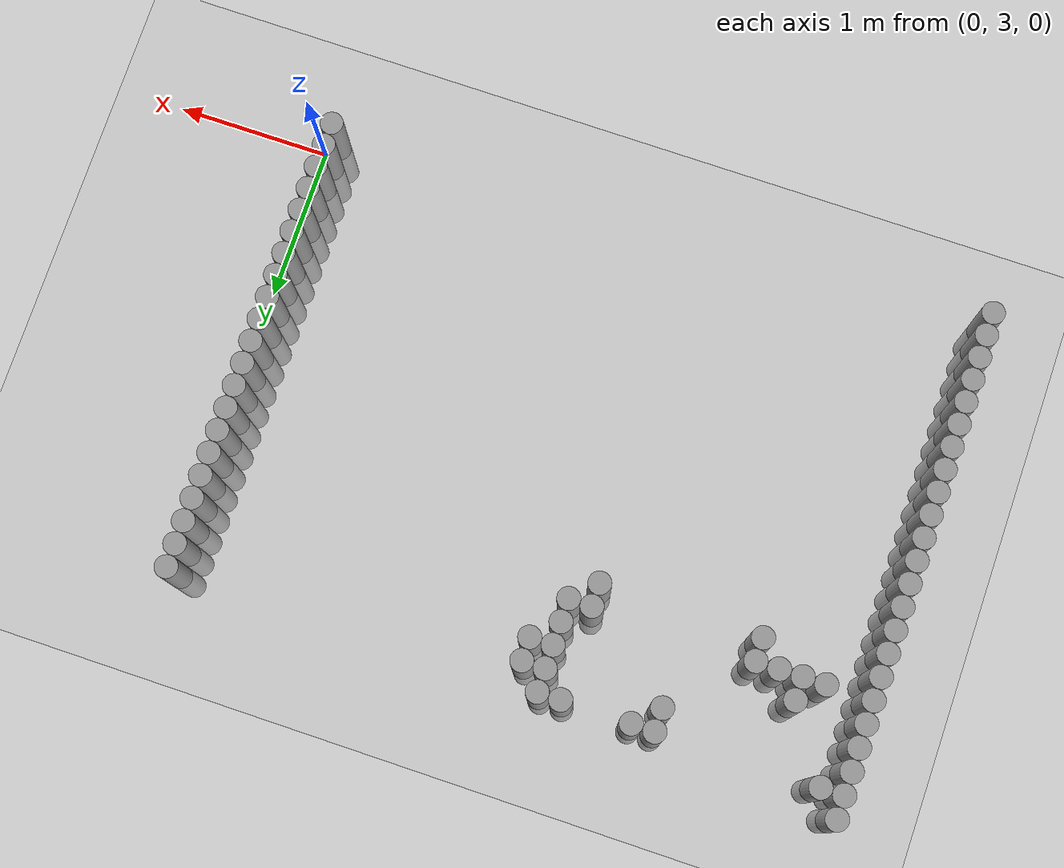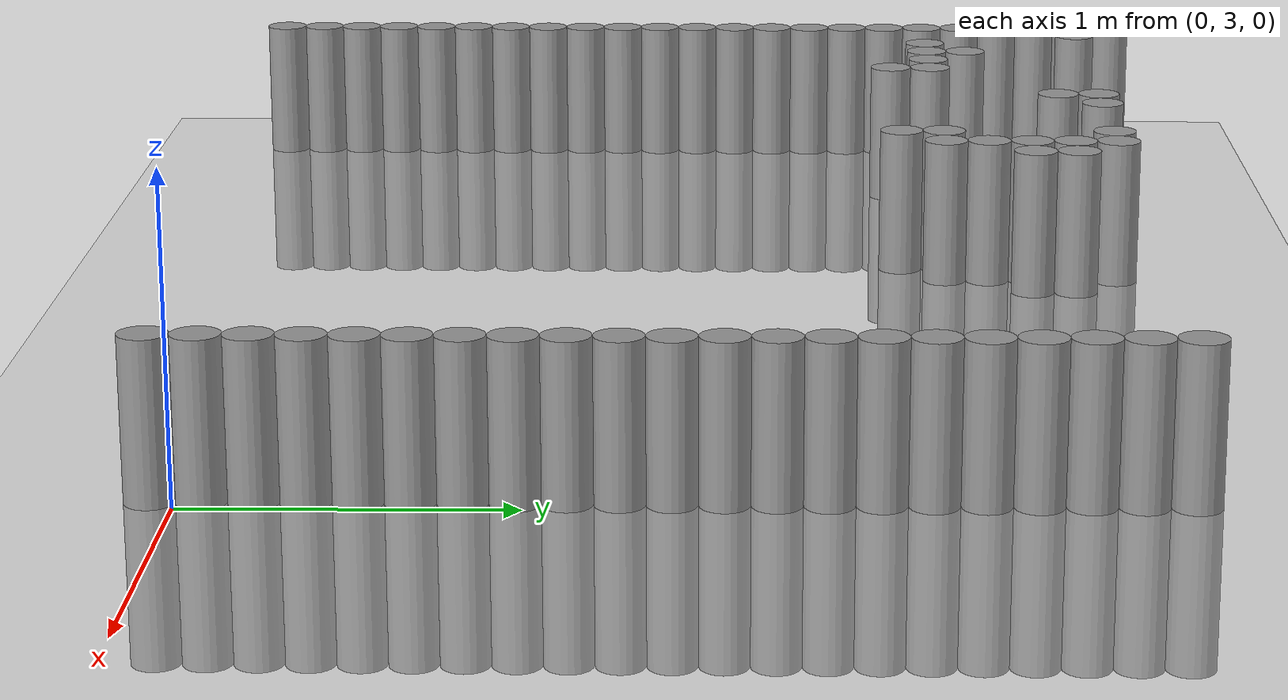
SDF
<sdf version="1.6">
 <world name="default">
  <model name="ground_plane">
   <static>1</static>
   <link name="link">
    <collision name="collision">
     <geometry><plane><normal>0 0 1</normal><size>100 100</size></plane></geometry>
     <surface><friction><ode><mu>100</mu><mu2>50</mu2></ode></friction></surface>
    </collision>
    <visual name="visual">
     <cast_shadows>0</cast_shadows>
     <geometry><plane><normal>0 0 1</normal><size>100 100</size></plane></geometry>
     <material>
      <script><uri>file://media/materials/scripts/gazebo.material</uri><name>Gazebo/Grey</name></script>
     </material>
    </visual>
   </link>
  </model>
  <model name="unit_cylinder_65">
   <pose>-4.425000 2.775000 0.000000 0.000000 0.000000 0.000000</pose>
   <link name="link">
    <inertial>
     <mass>1</mass>
     <inertia><ixx>0.145833</ixx><ixy>0</ixy><ixz>0</ixz><iyy>0.145833</iyy><iyz>0</iyz><izz>0.125</izz></inertia>
    </inertial>
    <collision name="collision">
     <geometry><cylinder><radius>0.075000</radius><length>1</length></cylinder></geometry>
    </collision>
    <visual name="visual">
     <geometry><cylinder><radius>0.075000</radius><length>1</length></cylinder></geometry>
     <material>
      <script><name>Gazebo/Grey</name><uri>file://media/materials/scripts/gazebo.material</uri></script>
     </material>
    </visual>
   </link>
  </model>
  <model name="unit_cylinder_66">
   <pose>-0.075000 2.925000 0.000000 0.000000 0.000000 0.000000</pose>
   <link name="link">
    <inertial>
     <mass>1</mass>
     <inertia><ixx>0.145833</ixx><ixy>0</ixy><ixz>0</ixz><iyy>0.145833</iyy><iyz>0</iyz><izz>0.125</izz></inertia>
    </inertial>
    <collision name="collision">
     <geometry><cylinder><radius>0.075000</radius><length>1</length></cylinder></geometry>
    </collision>
    <visual name="visual">
     <geometry><cylinder><radius>0.075000</radius><length>1</length></cylinder></geometry>
     <material>
      <script><name>Gazebo/Grey</name><uri>file://media/materials/scripts/gazebo.material</uri></script>
     </material>
    </visual>
   </link>
  </model>
  <model name="unit_cylinder_67">
   <pose>-4.425000 2.925000 0.000000 0.000000 0.000000 0.000000</pose>
   <link name="link">
    <inertial>
     <mass>1</mass>
     <inertia><ixx>0.145833</ixx><ixy>0</ixy><ixz>0</ixz><iyy>0.145833</iyy><iyz>0</iyz><izz>0.125</izz></inertia>
    </inertial>
    <collision name="collision">
     <geometry><cylinder><radius>0.075000</radius><length>1</length></cylinder></geometry>
    </collision>
    <visual name="visual">
     <geometry><cylinder><radius>0.075000</radius><length>1</length></cylinder></geometry>
     <material>
      <script><name>Gazebo/Grey</name><uri>file://media/materials/scripts/gazebo.material</uri></script>
     </material>
    </visual>
   </link>
  </model>
  <model name="unit_cylinder_68">
   <pose>-0.075000 3.075000 0.000000 0.000000 0.000000 0.000000</pose>
   <link name="link">
    <inertial>
     <mass>1</mass>
     <inertia><ixx>0.145833</ixx><ixy>0</ixy><ixz>0</ixz><iyy>0.145833</iyy><iyz>0</iyz><izz>0.125</izz></inertia>
    </inertial>
    <collision name="collision">
     <geometry><cylinder><radius>0.075000</radius><length>1</length></cylinder></geometry>
    </collision>
    <visual name="visual">
     <geometry><cylinder><radius>0.075000</radius><length>1</length></cylinder></geometry>
     <material>
      <script><name>Gazebo/Grey</name><uri>file://media/materials/scripts/gazebo.material</uri></script>
     </material>
    </visual>
   </link>
  </model>
  <model name="unit_cylinder_69">
   <pose>-4.425000 3.075000 0.000000 0.000000 0.000000 0.000000</pose>
   <link name="link">
    <inertial>
     <mass>1</mass>
     <inertia><ixx>0.145833</ixx><ixy>0</ixy><ixz>0</ixz><iyy>0.145833</iyy><iyz>0</iyz><izz>0.125</izz></inertia>
    </inertial>
    <collision name="collision">
     <geometry><cylinder><radius>0.075000</radius><length>1</length></cylinder></geometry>
    </collision>
    <visual name="visual">
     <geometry><cylinder><radius>0.075000</radius><length>1</length></cylinder></geometry>
     <material>
      <script><name>Gazebo/Grey</name><uri>file://media/materials/scripts/gazebo.material</uri></script>
     </material>
    </visual>
   </link>
  </model>
  <model name="unit_cylinder_70">
   <pose>-0.075000 3.225000 0.000000 0.000000 0.000000 0.000000</pose>
   <link name="link">
    <inertial>
     <mass>1</mass>
     <inertia><ixx>0.145833</ixx><ixy>0</ixy><ixz>0</ixz><iyy>0.145833</iyy><iyz>0</iyz><izz>0.125</izz></inertia>
    </inertial>
    <collision name="collision">
     <geometry><cylinder><radius>0.075000</radius><length>1</length></cylinder></geometry>
    </collision>
    <visual name="visual">
     <geometry><cylinder><radius>0.075000</radius><length>1</length></cylinder></geometry>
     <material>
      <script><name>Gazebo/Grey</name><uri>file://media/materials/scripts/gazebo.material</uri></script>
     </material>
    </visual>
   </link>
  </model>
  <model name="unit_cylinder_71">
   <pose>-4.425000 3.225000 0.000000 0.000000 0.000000 0.000000</pose>
   <link name="link">
    <inertial>
     <mass>1</mass>
     <inertia><ixx>0.145833</ixx><ixy>0</ixy><ixz>0</ixz><iyy>0.145833</iyy><iyz>0</iyz><izz>0.125</izz></inertia>
    </inertial>
    <collision name="collision">
     <geometry><cylinder><radius>0.075000</radius><length>1</length></cylinder></geometry>
    </collision>
    <visual name="visual">
     <geometry><cylinder><radius>0.075000</radius><length>1</length></cylinder></geometry>
     <material>
      <script><name>Gazebo/Grey</name><uri>file://media/materials/scripts/gazebo.material</uri></script>
     </material>
    </visual>
   </link>
  </model>
  <model name="unit_cylinder_72">
   <pose>-0.075000 3.375000 0.000000 0.000000 0.000000 0.000000</pose>
   <link name="link">
    <inertial>
     <mass>1</mass>
     <inertia><ixx>0.145833</ixx><ixy>0</ixy><ixz>0</ixz><iyy>0.145833</iyy><iyz>0</iyz><izz>0.125</izz></inertia>
    </inertial>
    <collision name="collision">
     <geometry><cylinder><radius>0.075000</radius><length>1</length></cylinder></geometry>
    </collision>
    <visual name="visual">
     <geometry><cylinder><radius>0.075000</radius><length>1</length></cylinder></geometry>
     <material>
      <script><name>Gazebo/Grey</name><uri>file://media/materials/scripts/gazebo.material</uri></script>
     </material>
    </visual>
   </link>
  </model>
  <model name="unit_cylinder_73">
   <pose>-4.425000 3.375000 0.000000 0.000000 0.000000 0.000000</pose>
   <link name="link">
    <inertial>
     <mass>1</mass>
     <inertia><ixx>0.145833</ixx><ixy>0</ixy><ixz>0</ixz><iyy>0.145833</iyy><iyz>0</iyz><izz>0.125</izz></inertia>
    </inertial>
    <collision name="collision">
     <geometry><cylinder><radius>0.075000</radius><length>1</length></cylinder></geometry>
    </collision>
    <visual name="visual">
     <geometry><cylinder><radius>0.075000</radius><length>1</length></cylinder></geometry>
     <material>
      <script><name>Gazebo/Grey</name><uri>file://media/materials/scripts/gazebo.material</uri></script>
     </material>
    </visual>
   </link>
  </model>
  <model name="unit_cylinder_74">
   <pose>-0.075000 3.525000 0.000000 0.000000 0.000000 0.000000</pose>
   <link name="link">
    <inertial>
     <mass>1</mass>
     <inertia><ixx>0.145833</ixx><ixy>0</ixy><ixz>0</ixz><iyy>0.145833</iyy><iyz>0</iyz><izz>0.125</izz></inertia>
    </inertial>
    <collision name="collision">
     <geometry><cylinder><radius>0.075000</radius><length>1</length></cylinder></geometry>
    </collision>
    <visual name="visual">
     <geometry><cylinder><radius>0.075000</radius><length>1</length></cylinder></geometry>
     <material>
      <script><name>Gazebo/Grey</name><uri>file://media/materials/scripts/gazebo.material</uri></script>
     </material>
    </visual>
   </link>
  </model>
  <model name="unit_cylinder_75">
   <pose>-4.425000 3.525000 0.000000 0.000000 0.000000 0.000000</pose>
   <link name="link">
    <inertial>
     <mass>1</mass>
     <inertia><ixx>0.145833</ixx><ixy>0</ixy><ixz>0</ixz><iyy>0.145833</iyy><iyz>0</iyz><izz>0.125</izz></inertia>
    </inertial>
    <collision name="collision">
     <geometry><cylinder><radius>0.075000</radius><length>1</length></cylinder></geometry>
    </collision>
    <visual name="visual">
     <geometry><cylinder><radius>0.075000</radius><length>1</length></cylinder></geometry>
     <material>
      <script><name>Gazebo/Grey</name><uri>file://media/materials/scripts/gazebo.material</uri></script>
     </material>
    </visual>
   </link>
  </model>
  <model name="unit_cylinder_76">
   <pose>-0.075000 3.675000 0.000000 0.000000 0.000000 0.000000</pose>
   <link name="link">
    <inertial>
     <mass>1</mass>
     <inertia><ixx>0.145833</ixx><ixy>0</ixy><ixz>0</ixz><iyy>0.145833</iyy><iyz>0</iyz><izz>0.125</izz></inertia>
    </inertial>
    <collision name="collision">
     <geometry><cylinder><radius>0.075000</radius><length>1</length></cylinder></geometry>
    </collision>
    <visual name="visual">
     <geometry><cylinder><radius>0.075000</radius><length>1</length></cylinder></geometry>
     <material>
      <script><name>Gazebo/Grey</name><uri>file://media/materials/scripts/gazebo.material</uri></script>
     </material>
    </visual>
   </link>
  </model>
  <model name="unit_cylinder_77">
   <pose>-4.425000 3.675000 0.000000 0.000000 0.000000 0.000000</pose>
   <link name="link">
    <inertial>
     <mass>1</mass>
     <inertia><ixx>0.145833</ixx><ixy>0</ixy><ixz>0</ixz><iyy>0.145833</iyy><iyz>0</iyz><izz>0.125</izz></inertia>
    </inertial>
    <collision name="collision">
     <geometry><cylinder><radius>0.075000</radius><length>1</length></cylinder></geometry>
    </collision>
    <visual name="visual">
     <geometry><cylinder><radius>0.075000</radius><length>1</length></cylinder></geometry>
     <material>
      <script><name>Gazebo/Grey</name><uri>file://media/materials/scripts/gazebo.material</uri></script>
     </material>
    </visual>
   </link>
  </model>
  <model name="unit_cylinder_78">
   <pose>-0.075000 3.825000 0.000000 0.000000 0.000000 0.000000</pose>
   <link name="link">
    <inertial>
     <mass>1</mass>
     <inertia><ixx>0.145833</ixx><ixy>0</ixy><ixz>0</ixz><iyy>0.145833</iyy><iyz>0</iyz><izz>0.125</izz></inertia>
    </inertial>
    <collision name="collision">
     <geometry><cylinder><radius>0.075000</radius><length>1</length></cylinder></geometry>
    </collision>
    <visual name="visual">
     <geometry><cylinder><radius>0.075000</radius><length>1</length></cylinder></geometry>
     <material>
      <script><name>Gazebo/Grey</name><uri>file://media/materials/scripts/gazebo.material</uri></script>
     </material>
    </visual>
   </link>
  </model>
  <model name="unit_cylinder_79">
   <pose>-4.425000 3.825000 0.000000 0.000000 0.000000 0.000000</pose>
   <link name="link">
    <inertial>
     <mass>1</mass>
     <inertia><ixx>0.145833</ixx><ixy>0</ixy><ixz>0</ixz><iyy>0.145833</iyy><iyz>0</iyz><izz>0.125</izz></inertia>
    </inertial>
    <collision name="collision">
     <geometry><cylinder><radius>0.075000</radius><length>1</length></cylinder></geometry>
    </collision>
    <visual name="visual">
     <geometry><cylinder><radius>0.075000</radius><length>1</length></cylinder></geometry>
     <material>
      <script><name>Gazebo/Grey</name><uri>file://media/materials/scripts/gazebo.material</uri></script>
     </material>
    </visual>
   </link>
  </model>
  <model name="unit_cylinder_80">
   <pose>-0.075000 3.975000 0.000000 0.000000 0.000000 0.000000</pose>
   <link name="link">
    <inertial>
     <mass>1</mass>
     <inertia><ixx>0.145833</ixx><ixy>0</ixy><ixz>0</ixz><iyy>0.145833</iyy><iyz>0</iyz><izz>0.125</izz></inertia>
    </inertial>
    <collision name="collision">
     <geometry><cylinder><radius>0.075000</radius><length>1</length></cylinder></geometry>
    </collision>
    <visual name="visual">
     <geometry><cylinder><radius>0.075000</radius><length>1</length></cylinder></geometry>
     <material>
      <script><name>Gazebo/Grey</name><uri>file://media/materials/scripts/gazebo.material</uri></script>
     </material>
    </visual>
   </link>
  </model>
  <model name="unit_cylinder_81">
   <pose>-4.425000 3.975000 0.000000 0.000000 0.000000 0.000000</pose>
   <link name="link">
    <inertial>
     <mass>1</mass>
     <inertia><ixx>0.145833</ixx><ixy>0</ixy><ixz>0</ixz><iyy>0.145833</iyy><iyz>0</iyz><izz>0.125</izz></inertia>
    </inertial>
    <collision name="collision">
     <geometry><cylinder><radius>0.075000</radius><length>1</length></cylinder></geometry>
    </collision>
    <visual name="visual">
     <geometry><cylinder><radius>0.075000</radius><length>1</length></cylinder></geometry>
     <material>
      <script><name>Gazebo/Grey</name><uri>file://media/materials/scripts/gazebo.material</uri></script>
     </material>
    </visual>
   </link>
  </model>
  <model name="unit_cylinder_82">
   <pose>-0.075000 4.125000 0.000000 0.000000 0.000000 0.000000</pose>
   <link name="link">
    <inertial>
     <mass>1</mass>
     <inertia><ixx>0.145833</ixx><ixy>0</ixy><ixz>0</ixz><iyy>0.145833</iyy><iyz>0</iyz><izz>0.125</izz></inertia>
    </inertial>
    <collision name="collision">
     <geometry><cylinder><radius>0.075000</radius><length>1</length></cylinder></geometry>
    </collision>
    <visual name="visual">
     <geometry><cylinder><radius>0.075000</radius><length>1</length></cylinder></geometry>
     <material>
      <script><name>Gazebo/Grey</name><uri>file://media/materials/scripts/gazebo.material</uri></script>
     </material>
    </visual>
   </link>
  </model>
  <model name="unit_cylinder_83">
   <pose>-4.425000 4.125000 0.000000 0.000000 0.000000 0.000000</pose>
   <link name="link">
    <inertial>
     <mass>1</mass>
     <inertia><ixx>0.145833</ixx><ixy>0</ixy><ixz>0</ixz><iyy>0.145833</iyy><iyz>0</iyz><izz>0.125</izz></inertia>
    </inertial>
    <collision name="collision">
     <geometry><cylinder><radius>0.075000</radius><length>1</length></cylinder></geometry>
    </collision>
    <visual name="visual">
     <geometry><cylinder><radius>0.075000</radius><length>1</length></cylinder></geometry>
     <material>
      <script><name>Gazebo/Grey</name><uri>file://media/materials/scripts/gazebo.material</uri></script>
     </material>
    </visual>
   </link>
  </model>
  <model name="unit_cylinder_84">
   <pose>-0.075000 4.275000 0.000000 0.000000 0.000000 0.000000</pose>
   <link name="link">
    <inertial>
     <mass>1</mass>
     <inertia><ixx>0.145833</ixx><ixy>0</ixy><ixz>0</ixz><iyy>0.145833</iyy><iyz>0</iyz><izz>0.125</izz></inertia>
    </inertial>
    <collision name="collision">
     <geometry><cylinder><radius>0.075000</radius><length>1</length></cylinder></geometry>
    </collision>
    <visual name="visual">
     <geometry><cylinder><radius>0.075000</radius><length>1</length></cylinder></geometry>
     <material>
      <script><name>Gazebo/Grey</name><uri>file://media/materials/scripts/gazebo.material</uri></script>
     </material>
    </visual>
   </link>
  </model>
  <model name="unit_cylinder_85">
   <pose>-4.425000 4.275000 0.000000 0.000000 0.000000 0.000000</pose>
   <link name="link">
    <inertial>
     <mass>1</mass>
     <inertia><ixx>0.145833</ixx><ixy>0</ixy><ixz>0</ixz><iyy>0.145833</iyy><iyz>0</iyz><izz>0.125</izz></inertia>
    </inertial>
    <collision name="collision">
     <geometry><cylinder><radius>0.075000</radius><length>1</length></cylinder></geometry>
    </collision>
    <visual name="visual">
     <geometry><cylinder><radius>0.075000</radius><length>1</length></cylinder></geometry>
     <material>
      <script><name>Gazebo/Grey</name><uri>file://media/materials/scripts/gazebo.material</uri></script>
     </material>
    </visual>
   </link>
  </model>
  <model name="unit_cylinder_86">
   <pose>-0.075000 4.425000 0.000000 0.000000 0.000000 0.000000</pose>
   <link name="link">
    <inertial>
     <mass>1</mass>
     <inertia><ixx>0.145833</ixx><ixy>0</ixy><ixz>0</ixz><iyy>0.145833</iyy><iyz>0</iyz><izz>0.125</izz></inertia>
    </inertial>
    <collision name="collision">
     <geometry><cylinder><radius>0.075000</radius><length>1</length></cylinder></geometry>
    </collision>
    <visual name="visual">
     <geometry><cylinder><radius>0.075000</radius><length>1</length></cylinder></geometry>
     <material>
      <script><name>Gazebo/Grey</name><uri>file://media/materials/scripts/gazebo.material</uri></script>
     </material>
    </visual>
   </link>
  </model>
  <model name="unit_cylinder_87">
   <pose>-4.425000 4.425000 0.000000 0.000000 0.000000 0.000000</pose>
   <link name="link">
    <inertial>
     <mass>1</mass>
     <inertia><ixx>0.145833</ixx><ixy>0</ixy><ixz>0</ixz><iyy>0.145833</iyy><iyz>0</iyz><izz>0.125</izz></inertia>
    </inertial>
    <collision name="collision">
     <geometry><cylinder><radius>0.075000</radius><length>1</length></cylinder></geometry>
    </collision>
    <visual name="visual">
     <geometry><cylinder><radius>0.075000</radius><length>1</length></cylinder></geometry>
     <material>
      <script><name>Gazebo/Grey</name><uri>file://media/materials/scripts/gazebo.material</uri></script>
     </material>
    </visual>
   </link>
  </model>
  <model name="unit_cylinder_88">
   <pose>-0.075000 4.575000 0.000000 0.000000 0.000000 0.000000</pose>
   <link name="link">
    <inertial>
     <mass>1</mass>
     <inertia><ixx>0.145833</ixx><ixy>0</ixy><ixz>0</ixz><iyy>0.145833</iyy><iyz>0</iyz><izz>0.125</izz></inertia>
    </inertial>
    <collision name="collision">
     <geometry><cylinder><radius>0.075000</radius><length>1</length></cylinder></geometry>
    </collision>
    <visual name="visual">
     <geometry><cylinder><radius>0.075000</radius><length>1</length></cylinder></geometry>
     <material>
      <script><name>Gazebo/Grey</name><uri>file://media/materials/scripts/gazebo.material</uri></script>
     </material>
    </visual>
   </link>
  </model>
  <model name="unit_cylinder_89">
   <pose>-4.425000 4.575000 0.000000 0.000000 0.000000 0.000000</pose>
   <link name="link">
    <inertial>
     <mass>1</mass>
     <inertia><ixx>0.145833</ixx><ixy>0</ixy><ixz>0</ixz><iyy>0.145833</iyy><iyz>0</iyz><izz>0.125</izz></inertia>
    </inertial>
    <collision name="collision">
     <geometry><cylinder><radius>0.075000</radius><length>1</length></cylinder></geometry>
    </collision>
    <visual name="visual">
     <geometry><cylinder><radius>0.075000</radius><length>1</length></cylinder></geometry>
     <material>
      <script><name>Gazebo/Grey</name><uri>file://media/materials/scripts/gazebo.material</uri></script>
     </material>
    </visual>
   </link>
  </model>
  <model name="unit_cylinder_90">
   <pose>-0.075000 4.725000 0.000000 0.000000 0.000000 0.000000</pose>
   <link name="link">
    <inertial>
     <mass>1</mass>
     <inertia><ixx>0.145833</ixx><ixy>0</ixy><ixz>0</ixz><iyy>0.145833</iyy><iyz>0</iyz><izz>0.125</izz></inertia>
    </inertial>
    <collision name="collision">
     <geometry><cylinder><radius>0.075000</radius><length>1</length></cylinder></geometry>
    </collision>
    <visual name="visual">
     <geometry><cylinder><radius>0.075000</radius><length>1</length></cylinder></geometry>
     <material>
      <script><name>Gazebo/Grey</name><uri>file://media/materials/scripts/gazebo.material</uri></script>
     </material>
    </visual>
   </link>
  </model>
  <model name="unit_cylinder_91">
   <pose>-4.425000 4.725000 0.000000 0.000000 0.000000 0.000000</pose>
   <link name="link">
    <inertial>
     <mass>1</mass>
     <inertia><ixx>0.145833</ixx><ixy>0</ixy><ixz>0</ixz><iyy>0.145833</iyy><iyz>0</iyz><izz>0.125</izz></inertia>
    </inertial>
    <collision name="collision">
     <geometry><cylinder><radius>0.075000</radius><length>1</length></cylinder></geometry>
    </collision>
    <visual name="visual">
     <geometry><cylinder><radius>0.075000</radius><length>1</length></cylinder></geometry>
     <material>
      <script><name>Gazebo/Grey</name><uri>file://media/materials/scripts/gazebo.material</uri></script>
     </material>
    </visual>
   </link>
  </model>
  <model name="unit_cylinder_92">
   <pose>-0.075000 4.875000 0.000000 0.000000 0.000000 0.000000</pose>
   <link name="link">
    <inertial>
     <mass>1</mass>
     <inertia><ixx>0.145833</ixx><ixy>0</ixy><ixz>0</ixz><iyy>0.145833</iyy><iyz>0</iyz><izz>0.125</izz></inertia>
    </inertial>
    <collision name="collision">
     <geometry><cylinder><radius>0.075000</radius><length>1</length></cylinder></geometry>
    </collision>
    <visual name="visual">
     <geometry><cylinder><radius>0.075000</radius><length>1</length></cylinder></geometry>
     <material>
      <script><name>Gazebo/Grey</name><uri>file://media/materials/scripts/gazebo.material</uri></script>
     </material>
    </visual>
   </link>
  </model>
  <model name="unit_cylinder_93">
   <pose>-4.425000 4.875000 0.000000 0.000000 0.000000 0.000000</pose>
   <link name="link">
    <inertial>
     <mass>1</mass>
     <inertia><ixx>0.145833</ixx><ixy>0</ixy><ixz>0</ixz><iyy>0.145833</iyy><iyz>0</iyz><izz>0.125</izz></inertia>
    </inertial>
    <collision name="collision">
     <geometry><cylinder><radius>0.075000</radius><length>1</length></cylinder></geometry>
    </collision>
    <visual name="visual">
     <geometry><cylinder><radius>0.075000</radius><length>1</length></cylinder></geometry>
     <material>
      <script><name>Gazebo/Grey</name><uri>file://media/materials/scripts/gazebo.material</uri></script>
     </material>
    </visual>
   </link>
  </model>
  <model name="unit_cylinder_94">
   <pose>-0.075000 5.025000 0.000000 0.000000 0.000000 0.000000</pose>
   <link name="link">
    <inertial>
     <mass>1</mass>
     <inertia><ixx>0.145833</ixx><ixy>0</ixy><ixz>0</ixz><iyy>0.145833</iyy><iyz>0</iyz><izz>0.125</izz></inertia>
    </inertial>
    <collision name="collision">
     <geometry><cylinder><radius>0.075000</radius><length>1</length></cylinder></geometry>
    </collision>
    <visual name="visual">
     <geometry><cylinder><radius>0.075000</radius><length>1</length></cylinder></geometry>
     <material>
      <script><name>Gazebo/Grey</name><uri>file://media/materials/scripts/gazebo.material</uri></script>
     </material>
    </visual>
   </link>
  </model>
  <model name="unit_cylinder_95">
   <pose>-4.425000 5.025000 0.000000 0.000000 0.000000 0.000000</pose>
   <link name="link">
    <inertial>
     <mass>1</mass>
     <inertia><ixx>0.145833</ixx><ixy>0</ixy><ixz>0</ixz><iyy>0.145833</iyy><iyz>0</iyz><izz>0.125</izz></inertia>
    </inertial>
    <collision name="collision">
     <geometry><cylinder><radius>0.075000</radius><length>1</length></cylinder></geometry>
    </collision>
    <visual name="visual">
     <geometry><cylinder><radius>0.075000</radius><length>1</length></cylinder></geometry>
     <material>
      <script><name>Gazebo/Grey</name><uri>file://media/materials/scripts/gazebo.material</uri></script>
     </material>
    </visual>
   </link>
  </model>
  <model name="unit_cylinder_96">
   <pose>-4.425000 5.175000 0.000000 0.000000 0.000000 0.000000</pose>
   <link name="link">
    <inertial>
     <mass>1</mass>
     <inertia><ixx>0.145833</ixx><ixy>0</ixy><ixz>0</ixz><iyy>0.145833</iyy><iyz>0</iyz><izz>0.125</izz></inertia>
    </inertial>
    <collision name="collision">
     <geometry><cylinder><radius>0.075000</radius><length>1</length></cylinder></geometry>
    </collision>
    <visual name="visual">
     <geometry><cylinder><radius>0.075000</radius><length>1</length></cylinder></geometry>
     <material>
      <script><name>Gazebo/Grey</name><uri>file://media/materials/scripts/gazebo.material</uri></script>
     </material>
    </visual>
   </link>
  </model>
  <model name="unit_cylinder_97">
   <pose>-4.425000 5.325000 0.000000 0.000000 0.000000 0.000000</pose>
   <link name="link">
    <inertial>
     <mass>1</mass>
     <inertia><ixx>0.145833</ixx><ixy>0</ixy><ixz>0</ixz><iyy>0.145833</iyy><iyz>0</iyz><izz>0.125</izz></inertia>
    </inertial>
    <collision name="collision">
     <geometry><cylinder><radius>0.075000</radius><length>1</length></cylinder></geometry>
    </collision>
    <visual name="visual">
     <geometry><cylinder><radius>0.075000</radius><length>1</length></cylinder></geometry>
     <material>
      <script><name>Gazebo/Grey</name><uri>file://media/materials/scripts/gazebo.material</uri></script>
     </material>
    </visual>
   </link>
  </model>
  <model name="unit_cylinder_98">
   <pose>-4.425000 5.475000 0.000000 0.000000 0.000000 0.000000</pose>
   <link name="link">
    <inertial>
     <mass>1</mass>
     <inertia><ixx>0.145833</ixx><ixy>0</ixy><ixz>0</ixz><iyy>0.145833</iyy><iyz>0</iyz><izz>0.125</izz></inertia>
    </inertial>
    <collision name="collision">
     <geometry><cylinder><radius>0.075000</radius><length>1</length></cylinder></geometry>
    </collision>
    <visual name="visual">
     <geometry><cylinder><radius>0.075000</radius><length>1</length></cylinder></geometry>
     <material>
      <script><name>Gazebo/Grey</name><uri>file://media/materials/scripts/gazebo.material</uri></script>
     </material>
    </visual>
   </link>
  </model>
  <model name="unit_cylinder_99">
   <pose>-4.425000 5.625000 0.000000 0.000000 0.000000 0.000000</pose>
   <link name="link">
    <inertial>
     <mass>1</mass>
     <inertia><ixx>0.145833</ixx><ixy>0</ixy><ixz>0</ixz><iyy>0.145833</iyy><iyz>0</iyz><izz>0.125</izz></inertia>
    </inertial>
    <collision name="collision">
     <geometry><cylinder><radius>0.075000</radius><length>1</length></cylinder></geometry>
    </collision>
    <visual name="visual">
     <geometry><cylinder><radius>0.075000</radius><length>1</length></cylinder></geometry>
     <material>
      <script><name>Gazebo/Grey</name><uri>file://media/materials/scripts/gazebo.material</uri></script>
     </material>
    </visual>
   </link>
  </model>
  <model name="unit_cylinder_100">
   <pose>-4.425000 5.775000 0.000000 0.000000 0.000000 0.000000</pose>
   <link name="link">
    <inertial>
     <mass>1</mass>
     <inertia><ixx>0.145833</ixx><ixy>0</ixy><ixz>0</ixz><iyy>0.145833</iyy><iyz>0</iyz><izz>0.125</izz></inertia>
    </inertial>
    <collision name="collision">
     <geometry><cylinder><radius>0.075000</radius><length>1</length></cylinder></geometry>
    </collision>
    <visual name="visual">
     <geometry><cylinder><radius>0.075000</radius><length>1</length></cylinder></geometry>
     <material>
      <script><name>Gazebo/Grey</name><uri>file://media/materials/scripts/gazebo.material</uri></script>
     </material>
    </visual>
   </link>
  </model>
  <model name="unit_cylinder_101">
   <pose>-4.425000 5.925000 0.000000 0.000000 0.000000 0.000000</pose>
   <link name="link">
    <inertial>
     <mass>1</mass>
     <inertia><ixx>0.145833</ixx><ixy>0</ixy><ixz>0</ixz><iyy>0.145833</iyy><iyz>0</iyz><izz>0.125</izz></inertia>
    </inertial>
    <collision name="collision">
     <geometry><cylinder><radius>0.075000</radius><length>1</length></cylinder></geometry>
    </collision>
    <visual name="visual">
     <geometry><cylinder><radius>0.075000</radius><length>1</length></cylinder></geometry>
     <material>
      <script><name>Gazebo/Grey</name><uri>file://media/materials/scripts/gazebo.material</uri></script>
     </material>
    </visual>
   </link>
  </model>
  <model name="unit_cylinder_102">
   <pose>-4.425000 6.075000 0.000000 0.000000 0.000000 0.000000</pose>
   <link name="link">
    <inertial>
     <mass>1</mass>
     <inertia><ixx>0.145833</ixx><ixy>0</ixy><ixz>0</ixz><iyy>0.145833</iyy><iyz>0</iyz><izz>0.125</izz></inertia>
    </inertial>
    <collision name="collision">
     <geometry><cylinder><radius>0.075000</radius><length>1</length></cylinder></geometry>
    </collision>
    <visual name="visual">
     <geometry><cylinder><radius>0.075000</radius><length>1</length></cylinder></geometry>
     <material>
      <script><name>Gazebo/Grey</name><uri>file://media/materials/scripts/gazebo.material</uri></script>
     </material>
    </visual>
   </link>
  </model>
  <model name="unit_cylinder_126">
   <pose>-4.275000 5.925000 0.000000 0.000000 0.000000 0.000000</pose>
   <link name="link">
    <inertial>
     <mass>1</mass>
     <inertia><ixx>0.145833</ixx><ixy>0</ixy><ixz>0</ixz><iyy>0.145833</iyy><iyz>0</iyz><izz>0.125</izz></inertia>
    </inertial>
    <collision name="collision">
     <geometry><cylinder><radius>0.075000</radius><length>1</length></cylinder></geometry>
    </collision>
    <visual name="visual">
     <geometry><cylinder><radius>0.075000</radius><length>1</length></cylinder></geometry>
     <material>
      <script><name>Gazebo/Grey</name><uri>file://media/materials/scripts/gazebo.material</uri></script>
     </material>
    </visual>
   </link>
  </model>
  <model name="unit_cylinder_143">
   <pose>-4.125000 5.325000 0.000000 0.000000 0.000000 0.000000</pose>
   <link name="link">
    <inertial>
     <mass>1</mass>
     <inertia><ixx>0.145833</ixx><ixy>0</ixy><ixz>0</ixz><iyy>0.145833</iyy><iyz>0</iyz><izz>0.125</izz></inertia>
    </inertial>
    <collision name="collision">
     <geometry><cylinder><radius>0.075000</radius><length>1</length></cylinder></geometry>
    </collision>
    <visual name="visual">
     <geometry><cylinder><radius>0.075000</radius><length>1</length></cylinder></geometry>
     <material>
      <script><name>Gazebo/Grey</name><uri>file://media/materials/scripts/gazebo.material</uri></script>
     </material>
    </visual>
   </link>
  </model>
  <model name="unit_cylinder_150">
   <pose>-3.975000 5.325000 0.000000 0.000000 0.000000 0.000000</pose>
   <link name="link">
    <inertial>
     <mass>1</mass>
     <inertia><ixx>0.145833</ixx><ixy>0</ixy><ixz>0</ixz><iyy>0.145833</iyy><iyz>0</iyz><izz>0.125</izz></inertia>
    </inertial>
    <collision name="collision">
     <geometry><cylinder><radius>0.075000</radius><length>1</length></cylinder></geometry>
    </collision>
    <visual name="visual">
     <geometry><cylinder><radius>0.075000</radius><length>1</length></cylinder></geometry>
     <material>
      <script><name>Gazebo/Grey</name><uri>file://media/materials/scripts/gazebo.material</uri></script>
     </material>
    </visual>
   </link>
  </model>
  <model name="unit_cylinder_151">
   <pose>-3.975000 5.475000 0.000000 0.000000 0.000000 0.000000</pose>
   <link name="link">
    <inertial>
     <mass>1</mass>
     <inertia><ixx>0.145833</ixx><ixy>0</ixy><ixz>0</ixz><iyy>0.145833</iyy><iyz>0</iyz><izz>0.125</izz></inertia>
    </inertial>
    <collision name="collision">
     <geometry><cylinder><radius>0.075000</radius><length>1</length></cylinder></geometry>
    </collision>
    <visual name="visual">
     <geometry><cylinder><radius>0.075000</radius><length>1</length></cylinder></geometry>
     <material>
      <script><name>Gazebo/Grey</name><uri>file://media/materials/scripts/gazebo.material</uri></script>
     </material>
    </visual>
   </link>
  </model>
  <model name="unit_cylinder_156">
   <pose>-3.825000 5.325000 0.000000 0.000000 0.000000 0.000000</pose>
   <link name="link">
    <inertial>
     <mass>1</mass>
     <inertia><ixx>0.145833</ixx><ixy>0</ixy><ixz>0</ixz><iyy>0.145833</iyy><iyz>0</iyz><izz>0.125</izz></inertia>
    </inertial>
    <collision name="collision">
     <geometry><cylinder><radius>0.075000</radius><length>1</length></cylinder></geometry>
    </collision>
    <visual name="visual">
     <geometry><cylinder><radius>0.075000</radius><length>1</length></cylinder></geometry>
     <material>
      <script><name>Gazebo/Grey</name><uri>file://media/materials/scripts/gazebo.material</uri></script>
     </material>
    </visual>
   </link>
  </model>
  <model name="unit_cylinder_157">
   <pose>-3.675000 5.175000 0.000000 0.000000 0.000000 0.000000</pose>
   <link name="link">
    <inertial>
     <mass>1</mass>
     <inertia><ixx>0.145833</ixx><ixy>0</ixy><ixz>0</ixz><iyy>0.145833</iyy><iyz>0</iyz><izz>0.125</izz></inertia>
    </inertial>
    <collision name="collision">
     <geometry><cylinder><radius>0.075000</radius><length>1</length></cylinder></geometry>
    </collision>
    <visual name="visual">
     <geometry><cylinder><radius>0.075000</radius><length>1</length></cylinder></geometry>
     <material>
      <script><name>Gazebo/Grey</name><uri>file://media/materials/scripts/gazebo.material</uri></script>
     </material>
    </visual>
   </link>
  </model>
  <model name="unit_cylinder_158">
   <pose>-3.675000 5.325000 0.000000 0.000000 0.000000 0.000000</pose>
   <link name="link">
    <inertial>
     <mass>1</mass>
     <inertia><ixx>0.145833</ixx><ixy>0</ixy><ixz>0</ixz><iyy>0.145833</iyy><iyz>0</iyz><izz>0.125</izz></inertia>
    </inertial>
    <collision name="collision">
     <geometry><cylinder><radius>0.075000</radius><length>1</length></cylinder></geometry>
    </collision>
    <visual name="visual">
     <geometry><cylinder><radius>0.075000</radius><length>1</length></cylinder></geometry>
     <material>
      <script><name>Gazebo/Grey</name><uri>file://media/materials/scripts/gazebo.material</uri></script>
     </material>
    </visual>
   </link>
  </model>
  <model name="unit_cylinder_160">
   <pose>-3.225000 5.775000 0.000000 0.000000 0.000000 0.000000</pose>
   <link name="link">
    <inertial>
     <mass>1</mass>
     <inertia><ixx>0.145833</ixx><ixy>0</ixy><ixz>0</ixz><iyy>0.145833</iyy><iyz>0</iyz><izz>0.125</izz></inertia>
    </inertial>
    <collision name="collision">
     <geometry><cylinder><radius>0.075000</radius><length>1</length></cylinder></geometry>
    </collision>
    <visual name="visual">
     <geometry><cylinder><radius>0.075000</radius><length>1</length></cylinder></geometry>
     <material>
      <script><name>Gazebo/Grey</name><uri>file://media/materials/scripts/gazebo.material</uri></script>
     </material>
    </visual>
   </link>
  </model>
  <model name="unit_cylinder_161">
   <pose>-3.225000 5.925000 0.000000 0.000000 0.000000 0.000000</pose>
   <link name="link">
    <inertial>
     <mass>1</mass>
     <inertia><ixx>0.145833</ixx><ixy>0</ixy><ixz>0</ixz><iyy>0.145833</iyy><iyz>0</iyz><izz>0.125</izz></inertia>
    </inertial>
    <collision name="collision">
     <geometry><cylinder><radius>0.075000</radius><length>1</length></cylinder></geometry>
    </collision>
    <visual name="visual">
     <geometry><cylinder><radius>0.075000</radius><length>1</length></cylinder></geometry>
     <material>
      <script><name>Gazebo/Grey</name><uri>file://media/materials/scripts/gazebo.material</uri></script>
     </material>
    </visual>
   </link>
  </model>
  <model name="unit_cylinder_162">
   <pose>-3.075000 5.925000 0.000000 0.000000 0.000000 0.000000</pose>
   <link name="link">
    <inertial>
     <mass>1</mass>
     <inertia><ixx>0.145833</ixx><ixy>0</ixy><ixz>0</ixz><iyy>0.145833</iyy><iyz>0</iyz><izz>0.125</izz></inertia>
    </inertial>
    <collision name="collision">
     <geometry><cylinder><radius>0.075000</radius><length>1</length></cylinder></geometry>
    </collision>
    <visual name="visual">
     <geometry><cylinder><radius>0.075000</radius><length>1</length></cylinder></geometry>
     <material>
      <script><name>Gazebo/Grey</name><uri>file://media/materials/scripts/gazebo.material</uri></script>
     </material>
    </visual>
   </link>
  </model>
  <model name="unit_cylinder_168">
   <pose>-2.625000 5.175000 0.000000 0.000000 0.000000 0.000000</pose>
   <link name="link">
    <inertial>
     <mass>1</mass>
     <inertia><ixx>0.145833</ixx><ixy>0</ixy><ixz>0</ixz><iyy>0.145833</iyy><iyz>0</iyz><izz>0.125</izz></inertia>
    </inertial>
    <collision name="collision">
     <geometry><cylinder><radius>0.075000</radius><length>1</length></cylinder></geometry>
    </collision>
    <visual name="visual">
     <geometry><cylinder><radius>0.075000</radius><length>1</length></cylinder></geometry>
     <material>
      <script><name>Gazebo/Grey</name><uri>file://media/materials/scripts/gazebo.material</uri></script>
     </material>
    </visual>
   </link>
  </model>
  <model name="unit_cylinder_169">
   <pose>-2.625000 5.325000 0.000000 0.000000 0.000000 0.000000</pose>
   <link name="link">
    <inertial>
     <mass>1</mass>
     <inertia><ixx>0.145833</ixx><ixy>0</ixy><ixz>0</ixz><iyy>0.145833</iyy><iyz>0</iyz><izz>0.125</izz></inertia>
    </inertial>
    <collision name="collision">
     <geometry><cylinder><radius>0.075000</radius><length>1</length></cylinder></geometry>
    </collision>
    <visual name="visual">
     <geometry><cylinder><radius>0.075000</radius><length>1</length></cylinder></geometry>
     <material>
      <script><name>Gazebo/Grey</name><uri>file://media/materials/scripts/gazebo.material</uri></script>
     </material>
    </visual>
   </link>
  </model>
  <model name="unit_cylinder_170">
   <pose>-2.625000 5.925000 0.000000 0.000000 0.000000 0.000000</pose>
   <link name="link">
    <inertial>
     <mass>1</mass>
     <inertia><ixx>0.145833</ixx><ixy>0</ixy><ixz>0</ixz><iyy>0.145833</iyy><iyz>0</iyz><izz>0.125</izz></inertia>
    </inertial>
    <collision name="collision">
     <geometry><cylinder><radius>0.075000</radius><length>1</length></cylinder></geometry>
    </collision>
    <visual name="visual">
     <geometry><cylinder><radius>0.075000</radius><length>1</length></cylinder></geometry>
     <material>
      <script><name>Gazebo/Grey</name><uri>file://media/materials/scripts/gazebo.material</uri></script>
     </material>
    </visual>
   </link>
  </model>
  <model name="unit_cylinder_175">
   <pose>-2.475000 5.325000 0.000000 0.000000 0.000000 0.000000</pose>
   <link name="link">
    <inertial>
     <mass>1</mass>
     <inertia><ixx>0.145833</ixx><ixy>0</ixy><ixz>0</ixz><iyy>0.145833</iyy><iyz>0</iyz><izz>0.125</izz></inertia>
    </inertial>
    <collision name="collision">
     <geometry><cylinder><radius>0.075000</radius><length>1</length></cylinder></geometry>
    </collision>
    <visual name="visual">
     <geometry><cylinder><radius>0.075000</radius><length>1</length></cylinder></geometry>
     <material>
      <script><name>Gazebo/Grey</name><uri>file://media/materials/scripts/gazebo.material</uri></script>
     </material>
    </visual>
   </link>
  </model>
  <model name="unit_cylinder_176">
   <pose>-2.475000 5.475000 0.000000 0.000000 0.000000 0.000000</pose>
   <link name="link">
    <inertial>
     <mass>1</mass>
     <inertia><ixx>0.145833</ixx><ixy>0</ixy><ixz>0</ixz><iyy>0.145833</iyy><iyz>0</iyz><izz>0.125</izz></inertia>
    </inertial>
    <collision name="collision">
     <geometry><cylinder><radius>0.075000</radius><length>1</length></cylinder></geometry>
    </collision>
    <visual name="visual">
     <geometry><cylinder><radius>0.075000</radius><length>1</length></cylinder></geometry>
     <material>
      <script><name>Gazebo/Grey</name><uri>file://media/materials/scripts/gazebo.material</uri></script>
     </material>
    </visual>
   </link>
  </model>
  <model name="unit_cylinder_177">
   <pose>-2.475000 5.625000 0.000000 0.000000 0.000000 0.000000</pose>
   <link name="link">
    <inertial>
     <mass>1</mass>
     <inertia><ixx>0.145833</ixx><ixy>0</ixy><ixz>0</ixz><iyy>0.145833</iyy><iyz>0</iyz><izz>0.125</izz></inertia>
    </inertial>
    <collision name="collision">
     <geometry><cylinder><radius>0.075000</radius><length>1</length></cylinder></geometry>
    </collision>
    <visual name="visual">
     <geometry><cylinder><radius>0.075000</radius><length>1</length></cylinder></geometry>
     <material>
      <script><name>Gazebo/Grey</name><uri>file://media/materials/scripts/gazebo.material</uri></script>
     </material>
    </visual>
   </link>
  </model>
  <model name="unit_cylinder_178">
   <pose>-2.475000 5.775000 0.000000 0.000000 0.000000 0.000000</pose>
   <link name="link">
    <inertial>
     <mass>1</mass>
     <inertia><ixx>0.145833</ixx><ixy>0</ixy><ixz>0</ixz><iyy>0.145833</iyy><iyz>0</iyz><izz>0.125</izz></inertia>
    </inertial>
    <collision name="collision">
     <geometry><cylinder><radius>0.075000</radius><length>1</length></cylinder></geometry>
    </collision>
    <visual name="visual">
     <geometry><cylinder><radius>0.075000</radius><length>1</length></cylinder></geometry>
     <material>
      <script><name>Gazebo/Grey</name><uri>file://media/materials/scripts/gazebo.material</uri></script>
     </material>
    </visual>
   </link>
  </model>
  <model name="unit_cylinder_179">
   <pose>-2.475000 5.925000 0.000000 0.000000 0.000000 0.000000</pose>
   <link name="link">
    <inertial>
     <mass>1</mass>
     <inertia><ixx>0.145833</ixx><ixy>0</ixy><ixz>0</ixz><iyy>0.145833</iyy><iyz>0</iyz><izz>0.125</izz></inertia>
    </inertial>
    <collision name="collision">
     <geometry><cylinder><radius>0.075000</radius><length>1</length></cylinder></geometry>
    </collision>
    <visual name="visual">
     <geometry><cylinder><radius>0.075000</radius><length>1</length></cylinder></geometry>
     <material>
      <script><name>Gazebo/Grey</name><uri>file://media/materials/scripts/gazebo.material</uri></script>
     </material>
    </visual>
   </link>
  </model>
  <model name="unit_cylinder_182">
   <pose>-2.325000 5.625000 0.000000 0.000000 0.000000 0.000000</pose>
   <link name="link">
    <inertial>
     <mass>1</mass>
     <inertia><ixx>0.145833</ixx><ixy>0</ixy><ixz>0</ixz><iyy>0.145833</iyy><iyz>0</iyz><izz>0.125</izz></inertia>
    </inertial>
    <collision name="collision">
     <geometry><cylinder><radius>0.075000</radius><length>1</length></cylinder></geometry>
    </collision>
    <visual name="visual">
     <geometry><cylinder><radius>0.075000</radius><length>1</length></cylinder></geometry>
     <material>
      <script><name>Gazebo/Grey</name><uri>file://media/materials/scripts/gazebo.material</uri></script>
     </material>
    </visual>
   </link>
  </model>
  <model name="unit_cylinder_183">
   <pose>-2.325000 5.775000 0.000000 0.000000 0.000000 0.000000</pose>
   <link name="link">
    <inertial>
     <mass>1</mass>
     <inertia><ixx>0.145833</ixx><ixy>0</ixy><ixz>0</ixz><iyy>0.145833</iyy><iyz>0</iyz><izz>0.125</izz></inertia>
    </inertial>
    <collision name="collision">
     <geometry><cylinder><radius>0.075000</radius><length>1</length></cylinder></geometry>
    </collision>
    <visual name="visual">
     <geometry><cylinder><radius>0.075000</radius><length>1</length></cylinder></geometry>
     <material>
      <script><name>Gazebo/Grey</name><uri>file://media/materials/scripts/gazebo.material</uri></script>
     </material>
    </visual>
   </link>
  </model>
  <model name="unit_cylinder_227">
   <pose>-0.075000 5.175000 0.000000 0.000000 0.000000 0.000000</pose>
   <link name="link">
    <inertial>
     <mass>1</mass>
     <inertia><ixx>0.145833</ixx><ixy>0</ixy><ixz>0</ixz><iyy>0.145833</iyy><iyz>0</iyz><izz>0.125</izz></inertia>
    </inertial>
    <collision name="collision">
     <geometry><cylinder><radius>0.075000</radius><length>1</length></cylinder></geometry>
    </collision>
    <visual name="visual">
     <geometry><cylinder><radius>0.075000</radius><length>1</length></cylinder></geometry>
     <material>
      <script><name>Gazebo/Grey</name><uri>file://media/materials/scripts/gazebo.material</uri></script>
     </material>
    </visual>
   </link>
  </model>
  <model name="unit_cylinder_228">
   <pose>-0.075000 5.325000 0.000000 0.000000 0.000000 0.000000</pose>
   <link name="link">
    <inertial>
     <mass>1</mass>
     <inertia><ixx>0.145833</ixx><ixy>0</ixy><ixz>0</ixz><iyy>0.145833</iyy><iyz>0</iyz><izz>0.125</izz></inertia>
    </inertial>
    <collision name="collision">
     <geometry><cylinder><radius>0.075000</radius><length>1</length></cylinder></geometry>
    </collision>
    <visual name="visual">
     <geometry><cylinder><radius>0.075000</radius><length>1</length></cylinder></geometry>
     <material>
      <script><name>Gazebo/Grey</name><uri>file://media/materials/scripts/gazebo.material</uri></script>
     </material>
    </visual>
   </link>
  </model>
  <model name="unit_cylinder_229">
   <pose>-0.075000 5.475000 0.000000 0.000000 0.000000 0.000000</pose>
   <link name="link">
    <inertial>
     <mass>1</mass>
     <inertia><ixx>0.145833</ixx><ixy>0</ixy><ixz>0</ixz><iyy>0.145833</iyy><iyz>0</iyz><izz>0.125</izz></inertia>
    </inertial>
    <collision name="collision">
     <geometry><cylinder><radius>0.075000</radius><length>1</length></cylinder></geometry>
    </collision>
    <visual name="visual">
     <geometry><cylinder><radius>0.075000</radius><length>1</length></cylinder></geometry>
     <material>
      <script><name>Gazebo/Grey</name><uri>file://media/materials/scripts/gazebo.material</uri></script>
     </material>
    </visual>
   </link>
  </model>
  <model name="unit_cylinder_230">
   <pose>-0.075000 5.625000 0.000000 0.000000 0.000000 0.000000</pose>
   <link name="link">
    <inertial>
     <mass>1</mass>
     <inertia><ixx>0.145833</ixx><ixy>0</ixy><ixz>0</ixz><iyy>0.145833</iyy><iyz>0</iyz><izz>0.125</izz></inertia>
    </inertial>
    <collision name="collision">
     <geometry><cylinder><radius>0.075000</radius><length>1</length></cylinder></geometry>
    </collision>
    <visual name="visual">
     <geometry><cylinder><radius>0.075000</radius><length>1</length></cylinder></geometry>
     <material>
      <script><name>Gazebo/Grey</name><uri>file://media/materials/scripts/gazebo.material</uri></script>
     </material>
    </visual>
   </link>
  </model>
  <model name="unit_cylinder_231">
   <pose>-0.075000 5.775000 0.000000 0.000000 0.000000 0.000000</pose>
   <link name="link">
    <inertial>
     <mass>1</mass>
     <inertia><ixx>0.145833</ixx><ixy>0</ixy><ixz>0</ixz><iyy>0.145833</iyy><iyz>0</iyz><izz>0.125</izz></inertia>
    </inertial>
    <collision name="collision">
     <geometry><cylinder><radius>0.075000</radius><length>1</length></cylinder></geometry>
    </collision>
    <visual name="visual">
     <geometry><cylinder><radius>0.075000</radius><length>1</length></cylinder></geometry>
     <material>
      <script><name>Gazebo/Grey</name><uri>file://media/materials/scripts/gazebo.material</uri></script>
     </material>
    </visual>
   </link>
  </model>
  <model name="unit_cylinder_232">
   <pose>-0.075000 5.925000 0.000000 0.000000 0.000000 0.000000</pose>
   <link name="link">
    <inertial>
     <mass>1</mass>
     <inertia><ixx>0.145833</ixx><ixy>0</ixy><ixz>0</ixz><iyy>0.145833</iyy><iyz>0</iyz><izz>0.125</izz></inertia>
    </inertial>
    <collision name="collision">
     <geometry><cylinder><radius>0.075000</radius><length>1</length></cylinder></geometry>
    </collision>
    <visual name="visual">
     <geometry><cylinder><radius>0.075000</radius><length>1</length></cylinder></geometry>
     <material>
      <script><name>Gazebo/Grey</name><uri>file://media/materials/scripts/gazebo.material</uri></script>
     </material>
    </visual>
   </link>
  </model>
 </world>
</sdf>
